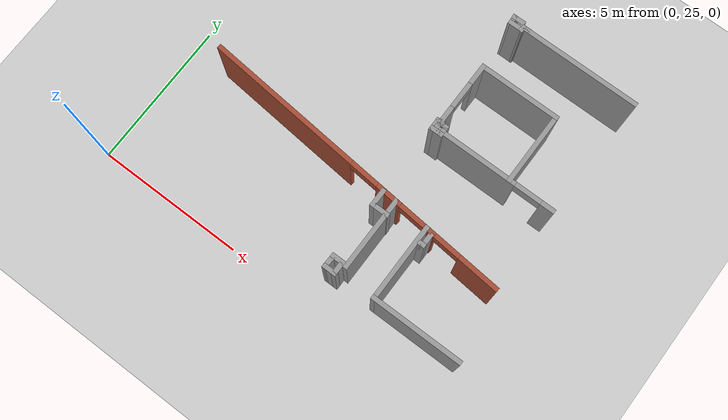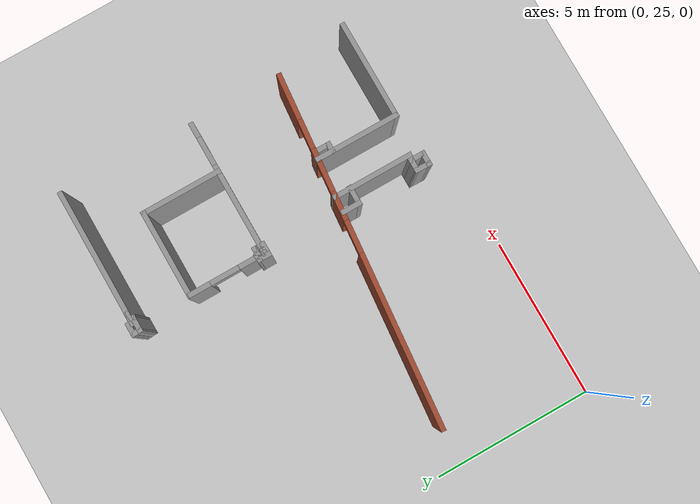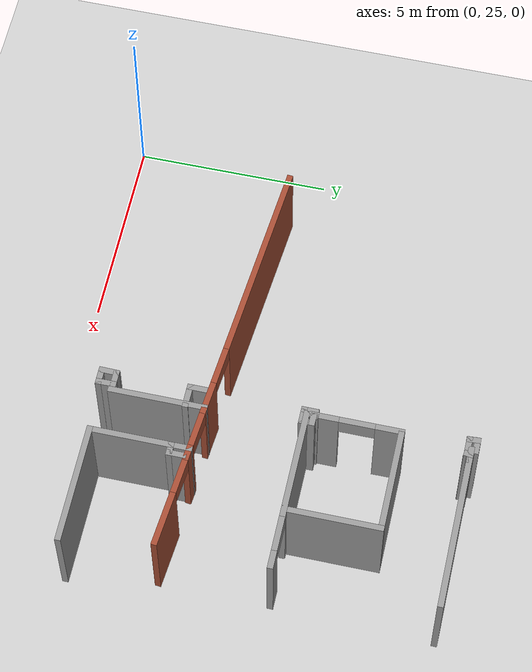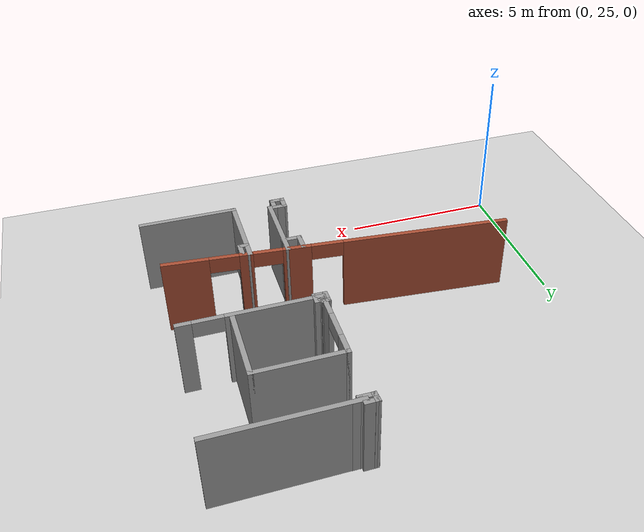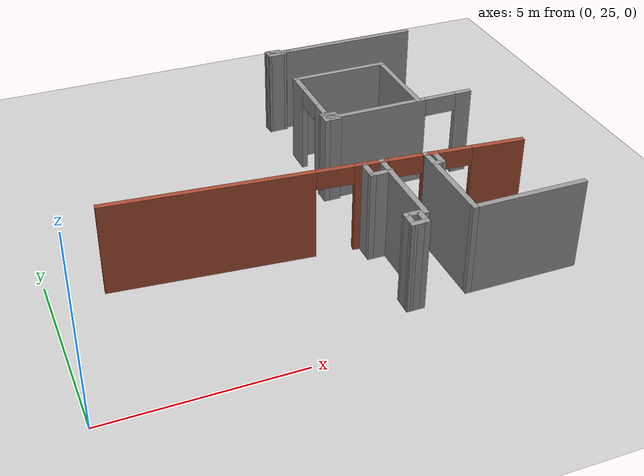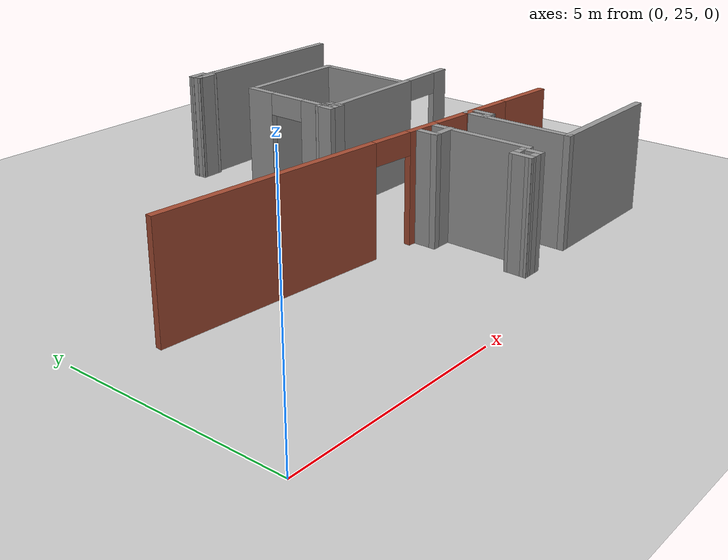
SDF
<sdf version="1.6">
 <world name="default">
  <model name="ground_plane">
   <static>1</static>
   <link name="link">
    <collision name="collision">
     <geometry><plane><normal>0 0 1</normal><size>100 100</size></plane></geometry>
     <surface><friction><ode><mu>100</mu><mu2>50</mu2></ode></friction></surface>
    </collision>
    <visual name="visual">
     <cast_shadows>0</cast_shadows>
     <geometry><plane><normal>0 0 1</normal><size>100 100</size></plane></geometry>
     <material>
      <script><uri>file://media/materials/scripts/gazebo.material</uri><name>Gazebo/Grey</name></script>
     </material>
    </visual>
   </link>
  </model>
  <model name="CVSSP">
   <pose>23.8714 24.094 0 0 -0 0</pose>
   <link name="Wall_386">
    <pose>-17.129 4.76187 0 0 0 -0.090044</pose>
    <visual name="Wall_386_Visual_0">
     <pose>-2.75908 0 1.25 0 -0 0</pose>
     <geometry><box><size>5.32665 0.15 2.5</size></box></geometry>
     <material>
      <script><uri>file://media/materials/scripts/gazebo.material</uri><name>Gazebo/Bricks</name></script>
      <ambient>1 1 1 1</ambient>
     </material>
    </visual>
    <collision name="Wall_386_Collision_0">
     <geometry><box><size>5.32665 0.15 2.5</size></box></geometry>
     <pose>-2.75908 0 1.25 0 -0 0</pose>
    </collision>
    <visual name="Wall_386_Visual_1">
     <pose>1.33587 0 1.25 0 -0 0</pose>
     <geometry><box><size>0.878962 0.15 2.5</size></box></geometry>
     <material>
      <script><uri>file://media/materials/scripts/gazebo.material</uri><name>Gazebo/Bricks</name></script>
      <ambient>1 1 1 1</ambient>
     </material>
    </visual>
    <collision name="Wall_386_Collision_1">
     <geometry><box><size>0.878962 0.15 2.5</size></box></geometry>
     <pose>1.33587 0 1.25 0 -0 0</pose>
    </collision>
    <visual name="Wall_386_Visual_2">
     <pose>2.88503 0 1.25 0 -0 0</pose>
     <geometry><box><size>0.419343 0.15 2.5</size></box></geometry>
     <material>
      <script><uri>file://media/materials/scripts/gazebo.material</uri><name>Gazebo/Bricks</name></script>
      <ambient>1 1 1 1</ambient>
     </material>
    </visual>
    <collision name="Wall_386_Collision_2">
     <geometry><box><size>0.419343 0.15 2.5</size></box></geometry>
     <pose>2.88503 0 1.25 0 -0 0</pose>
    </collision>
    <visual name="Wall_386_Visual_3">
     <pose>4.70855 0 1.25 0 -0 0</pose>
     <geometry><box><size>1.4277 0.15 2.5</size></box></geometry>
     <material>
      <script><uri>file://media/materials/scripts/gazebo.material</uri><name>Gazebo/Bricks</name></script>
      <ambient>1 1 1 1</ambient>
     </material>
    </visual>
    <collision name="Wall_386_Collision_3">
     <geometry><box><size>1.4277 0.15 2.5</size></box></geometry>
     <pose>4.70855 0 1.25 0 -0 0</pose>
    </collision>
    <visual name="Wall_386_Visual_4">
     <pose>0.400321 0 2.25 0 -0 0</pose>
     <geometry><box><size>0.992148 0.15 0.5</size></box></geometry>
     <material>
      <script><uri>file://media/materials/scripts/gazebo.material</uri><name>Gazebo/Bricks</name></script>
      <ambient>1 1 1 1</ambient>
     </material>
    </visual>
    <collision name="Wall_386_Collision_4">
     <geometry><box><size>0.992148 0.15 0.5</size></box></geometry>
     <pose>0.400321 0 2.25 0 -0 0</pose>
    </collision>
    <visual name="Wall_386_Visual_5">
     <pose>2.22536 0 2.25 0 -0 0</pose>
     <geometry><box><size>0.9 0.15 0.5</size></box></geometry>
     <material>
      <script><uri>file://media/materials/scripts/gazebo.material</uri><name>Gazebo/Bricks</name></script>
      <ambient>1 1 1 1</ambient>
     </material>
    </visual>
    <collision name="Wall_386_Collision_5">
     <geometry><box><size>0.9 0.15 0.5</size></box></geometry>
     <pose>2.22536 0 2.25 0 -0 0</pose>
    </collision>
    <visual name="Wall_386_Visual_6">
     <pose>3.5447 0 2.25 0 -0 0</pose>
     <geometry><box><size>0.9 0.15 0.5</size></box></geometry>
     <material>
      <script><uri>file://media/materials/scripts/gazebo.material</uri><name>Gazebo/Bricks</name></script>
      <ambient>1 1 1 1</ambient>
     </material>
    </visual>
    <collision name="Wall_386_Collision_6">
     <geometry><box><size>0.9 0.15 0.5</size></box></geometry>
     <pose>3.5447 0 2.25 0 -0 0</pose>
    </collision>
   </link>
   <link name="Wall_411">
    <pose>-13.8531 7.07942 0 0 -0 3.14159</pose>
    <visual name="Wall_411_Visual_0">
     <pose>-1.88996 0 1.25 0 -0 0</pose>
     <geometry><box><size>0.470089 0.15 2.5</size></box></geometry>
     <material>
      <script><uri>file://media/materials/scripts/gazebo.material</uri><name>Gazebo/Grey</name></script>
      <ambient>0.588235 0.588235 0.588235 1</ambient>
     </material>
    </visual>
    <collision name="Wall_411_Collision_0">
     <geometry><box><size>0.470089 0.15 2.5</size></box></geometry>
     <pose>-1.88996 0 1.25 0 -0 0</pose>
    </collision>
    <visual name="Wall_411_Visual_1">
     <pose>0.685044 0 1.25 0 -0 0</pose>
     <geometry><box><size>2.87991 0.15 2.5</size></box></geometry>
     <material>
      <script><uri>file://media/materials/scripts/gazebo.material</uri><name>Gazebo/Grey</name></script>
      <ambient>0.588235 0.588235 0.588235 1</ambient>
     </material>
    </visual>
    <collision name="Wall_411_Collision_1">
     <geometry><box><size>2.87991 0.15 2.5</size></box></geometry>
     <pose>0.685044 0 1.25 0 -0 0</pose>
    </collision>
    <visual name="Wall_411_Visual_2">
     <pose>-1.20491 0 2.25 0 -0 0</pose>
     <geometry><box><size>0.9 0.15 0.5</size></box></geometry>
     <material>
      <script><uri>file://media/materials/scripts/gazebo.material</uri><name>Gazebo/Grey</name></script>
      <ambient>0.588235 0.588235 0.588235 1</ambient>
     </material>
    </visual>
    <collision name="Wall_411_Collision_2">
     <geometry><box><size>0.9 0.15 0.5</size></box></geometry>
     <pose>-1.20491 0 2.25 0 -0 0</pose>
    </collision>
   </link>
   <link name="Wall_412">
    <pose>-15.9031 8.25442 0 0 -0 1.5708</pose>
    <visual name="Wall_412_Visual_0">
     <pose>-0.812626 0 1.25 0 -0 0</pose>
     <geometry><box><size>0.874747 0.15 2.5</size></box></geometry>
     <material>
      <script><uri>file://media/materials/scripts/gazebo.material</uri><name>Gazebo/Grey</name></script>
      <ambient>1 1 1 1</ambient>
     </material>
    </visual>
    <collision name="Wall_412_Collision_0">
     <geometry><box><size>0.874747 0.15 2.5</size></box></geometry>
     <pose>-0.812626 0 1.25 0 -0 0</pose>
    </collision>
    <visual name="Wall_412_Visual_1">
     <pose>0.887374 0 1.25 0 -0 0</pose>
     <geometry><box><size>0.725253 0.15 2.5</size></box></geometry>
     <material>
      <script><uri>file://media/materials/scripts/gazebo.material</uri><name>Gazebo/Grey</name></script>
      <ambient>1 1 1 1</ambient>
     </material>
    </visual>
    <collision name="Wall_412_Collision_1">
     <geometry><box><size>0.725253 0.15 2.5</size></box></geometry>
     <pose>0.887374 0 1.25 0 -0 0</pose>
    </collision>
    <visual name="Wall_412_Visual_2">
     <pose>0.074747 0 2.25 0 -0 0</pose>
     <geometry><box><size>0.9 0.15 0.5</size></box></geometry>
     <material>
      <script><uri>file://media/materials/scripts/gazebo.material</uri><name>Gazebo/Grey</name></script>
      <ambient>1 1 1 1</ambient>
     </material>
    </visual>
    <collision name="Wall_412_Collision_2">
     <geometry><box><size>0.9 0.15 0.5</size></box></geometry>
     <pose>0.074747 0 2.25 0 -0 0</pose>
    </collision>
   </link>
   <link name="Wall_413">
    <collision name="Wall_413_Collision">
     <geometry><box><size>2.75 0.15 2.5</size></box></geometry>
     <pose>0 0 1.25 0 -0 0</pose>
    </collision>
    <visual name="Wall_413_Visual">
     <pose>0 0 1.25 0 -0 0</pose>
     <geometry><box><size>2.75 0.15 2.5</size></box></geometry>
     <material>
      <script><uri>file://media/materials/scripts/gazebo.material</uri><name>Gazebo/Grey</name></script>
      <ambient>0.588235 0.588235 0.588235 1</ambient>
     </material>
    </visual>
    <pose>-14.6031 9.42942 0 0 -0 0</pose>
   </link>
   <link name="Wall_414">
    <collision name="Wall_414_Collision">
     <geometry><box><size>2.5 0.15 2.5</size></box></geometry>
     <pose>0 0 1.25 0 -0 0</pose>
    </collision>
    <visual name="Wall_414_Visual">
     <pose>0 0 1.25 0 -0 0</pose>
     <geometry><box><size>2.5 0.15 2.5</size></box></geometry>
     <material>
      <script><uri>file://media/materials/scripts/gazebo.material</uri><name>Gazebo/Grey</name></script>
      <ambient>0.588235 0.588235 0.588235 1</ambient>
     </material>
    </visual>
    <pose>-13.3031 8.25442 0 0 0 -1.5708</pose>
   </link>
   <link name="Wall_417">
    <collision name="Wall_417_Collision">
     <geometry><box><size>4.25 0.15 2.5</size></box></geometry>
     <pose>0 0 1.25 0 -0 0</pose>
    </collision>
    <visual name="Wall_417_Visual">
     <pose>0 0 1.25 0 -0 0</pose>
     <geometry><box><size>4.25 0.15 2.5</size></box></geometry>
     <material>
      <script><uri>file://media/materials/scripts/gazebo.material</uri><name>Gazebo/Grey</name></script>
      <ambient>1 1 1 1</ambient>
     </material>
    </visual>
    <pose>-13.7515 11.1539 0 0 -0 0</pose>
   </link>
   <link name="Wall_426">
    <collision name="Wall_426_Collision">
     <geometry><box><size>2.5 0.15 2.5</size></box></geometry>
     <pose>0 0 1.25 0 -0 0</pose>
    </collision>
    <visual name="Wall_426_Visual">
     <pose>0 0 1.25 0 -0 0</pose>
     <geometry><box><size>2.5 0.15 2.5</size></box></geometry>
     <material>
      <script><uri>file://media/materials/scripts/gazebo.material</uri><name>Gazebo/Grey</name></script>
      <ambient>0.588235 0.588235 0.588235 1</ambient>
     </material>
    </visual>
    <pose>-15.526 3.44298 0 0 0 -1.5708</pose>
   </link>
   <link name="Wall_434">
    <collision name="Wall_434_Collision">
     <geometry><box><size>0.640034 0.15 2.5</size></box></geometry>
     <pose>0 0 1.25 0 -0 0</pose>
    </collision>
    <visual name="Wall_434_Visual">
     <pose>0 0 1.25 0 -0 0</pose>
     <geometry><box><size>0.640034 0.15 2.5</size></box></geometry>
     <material>
      <script><uri>file://media/materials/scripts/gazebo.material</uri><name>Gazebo/Grey</name></script>
      <ambient>1 1 1 1</ambient>
     </material>
    </visual>
    <pose>-15.7533 4.14574 0 0 -0 3.14159</pose>
   </link>
   <link name="Wall_435">
    <collision name="Wall_435_Collision">
     <geometry><box><size>0.639722 0.15 2.5</size></box></geometry>
     <pose>0 0 1.25 0 -0 0</pose>
    </collision>
    <visual name="Wall_435_Visual">
     <pose>0 0 1.25 0 -0 0</pose>
     <geometry><box><size>0.639722 0.15 2.5</size></box></geometry>
     <material>
      <script><uri>file://media/materials/scripts/gazebo.material</uri><name>Gazebo/Grey</name></script>
      <ambient>0.588235 0.588235 0.588235 1</ambient>
     </material>
    </visual>
    <pose>-15.9982 4.3906 0 0 -0 1.5708</pose>
   </link>
   <link name="Wall_443">
    <collision name="Wall_443_Collision">
     <geometry><box><size>3.08833 0.15 2.5</size></box></geometry>
     <pose>0 0 1.25 0 -0 0</pose>
    </collision>
    <visual name="Wall_443_Visual">
     <pose>0 0 1.25 0 -0 0</pose>
     <geometry><box><size>3.08833 0.15 2.5</size></box></geometry>
     <material>
      <script><uri>file://media/materials/scripts/gazebo.material</uri><name>Gazebo/Grey</name></script>
      <ambient>0.588235 0.588235 0.588235 1</ambient>
     </material>
    </visual>
    <pose>-12.9025 2.02945 0 0 -0 3.14159</pose>
   </link>
   <link name="Wall_444">
    <collision name="Wall_444_Collision">
     <geometry><box><size>2.63359 0.15 2.5</size></box></geometry>
     <pose>0 0 1.25 0 -0 0</pose>
    </collision>
    <visual name="Wall_444_Visual">
     <pose>0 0 1.25 0 -0 0</pose>
     <geometry><box><size>2.63359 0.15 2.5</size></box></geometry>
     <material>
      <script><uri>file://media/materials/scripts/gazebo.material</uri><name>Gazebo/Grey</name></script>
      <ambient>0.588235 0.588235 0.588235 1</ambient>
     </material>
    </visual>
    <pose>-14.3716 3.27124 0 0 -0 1.5708</pose>
   </link>
   <link name="Wall_685">
    <collision name="Wall_685_Collision">
     <geometry><box><size>0.296904 0.15 2.5</size></box></geometry>
     <pose>0 0 1.25 0 -0 0</pose>
    </collision>
    <visual name="Wall_685_Visual">
     <pose>0 0 1.25 0 -0 0</pose>
     <geometry><box><size>0.296904 0.15 2.5</size></box></geometry>
     <material>
      <script><uri>file://media/materials/scripts/gazebo.material</uri><name>Gazebo/Grey</name></script>
      <ambient>1 1 1 1</ambient>
     </material>
    </visual>
    <pose>-15.5827 11.1599 0 0 -0 3.14159</pose>
   </link>
   <link name="Wall_686">
    <collision name="Wall_686_Collision">
     <geometry><box><size>0.244046 0.15 2.5</size></box></geometry>
     <pose>0 0 1.25 0 -0 0</pose>
    </collision>
    <visual name="Wall_686_Visual">
     <pose>0 0 1.25 0 -0 0</pose>
     <geometry><box><size>0.244046 0.15 2.5</size></box></geometry>
     <material>
      <script><uri>file://media/materials/scripts/gazebo.material</uri><name>Gazebo/Grey</name></script>
      <ambient>1 1 1 1</ambient>
     </material>
    </visual>
    <pose>-15.6625 11.1134 0 0 0 -1.71269</pose>
   </link>
   <link name="Wall_687">
    <collision name="Wall_687_Collision">
     <geometry><box><size>0.535932 0.15 2.5</size></box></geometry>
     <pose>0 0 1.25 0 -0 0</pose>
    </collision>
    <visual name="Wall_687_Visual">
     <pose>0 0 1.25 0 -0 0</pose>
     <geometry><box><size>0.535932 0.15 2.5</size></box></geometry>
     <material>
      <script><uri>file://media/materials/scripts/gazebo.material</uri><name>Gazebo/Grey</name></script>
      <ambient>1 1 1 1</ambient>
     </material>
    </visual>
    <pose>-15.862 11.0668 0 0 -0 3.14159</pose>
   </link>
   <link name="Wall_688">
    <collision name="Wall_688_Collision">
     <geometry><box><size>0.349944 0.15 2.5</size></box></geometry>
     <pose>0 0 1.25 0 -0 0</pose>
    </collision>
    <visual name="Wall_688_Visual">
     <pose>0 0 1.25 0 -0 0</pose>
     <geometry><box><size>0.349944 0.15 2.5</size></box></geometry>
     <material>
      <script><uri>file://media/materials/scripts/gazebo.material</uri><name>Gazebo/Grey</name></script>
      <ambient>1 1 1 1</ambient>
     </material>
    </visual>
    <pose>-16.0615 11.1666 0 0 -0 1.63736</pose>
   </link>
   <link name="Wall_689">
    <collision name="Wall_689_Collision">
     <geometry><box><size>0.442904 0.15 2.5</size></box></geometry>
     <pose>0 0 1.25 0 -0 0</pose>
    </collision>
    <visual name="Wall_689_Visual">
     <pose>0 0 1.25 0 -0 0</pose>
     <geometry><box><size>0.442904 0.15 2.5</size></box></geometry>
     <material>
      <script><uri>file://media/materials/scripts/gazebo.material</uri><name>Gazebo/Grey</name></script>
      <ambient>1 1 1 1</ambient>
     </material>
    </visual>
    <pose>-15.9218 11.2663 0 0 -0 0</pose>
   </link>
   <link name="Wall_697">
    <collision name="Wall_697_Collision">
     <geometry><box><size>0.438966 0.15 2.5</size></box></geometry>
     <pose>0 0 1.25 0 -0 0</pose>
    </collision>
    <visual name="Wall_697_Visual">
     <pose>0 0 1.25 0 -0 0</pose>
     <geometry><box><size>0.438966 0.15 2.5</size></box></geometry>
     <material>
      <script><uri>file://media/materials/scripts/gazebo.material</uri><name>Gazebo/Grey</name></script>
      <ambient>1 1 1 1</ambient>
     </material>
    </visual>
    <pose>-15.9915 7.1434 0 0 0 -1.5708</pose>
   </link>
   <link name="Wall_698">
    <collision name="Wall_698_Collision">
     <geometry><box><size>0.461779 0.15 2.5</size></box></geometry>
     <pose>0 0 1.25 0 -0 0</pose>
    </collision>
    <visual name="Wall_698_Visual">
     <pose>0 0 1.25 0 -0 0</pose>
     <geometry><box><size>0.461779 0.15 2.5</size></box></geometry>
     <material>
      <script><uri>file://media/materials/scripts/gazebo.material</uri><name>Gazebo/Grey</name></script>
      <ambient>1 1 1 1</ambient>
     </material>
    </visual>
    <pose>-15.8356 6.99892 0 0 -0 0</pose>
   </link>
   <link name="Wall_699">
    <collision name="Wall_699_Collision">
     <geometry><box><size>0.408549 0.15 2.5</size></box></geometry>
     <pose>0 0 1.25 0 -0 0</pose>
    </collision>
    <visual name="Wall_699_Visual">
     <pose>0 0 1.25 0 -0 0</pose>
     <geometry><box><size>0.408549 0.15 2.5</size></box></geometry>
     <material>
      <script><uri>file://media/materials/scripts/gazebo.material</uri><name>Gazebo/Grey</name></script>
      <ambient>1 1 1 1</ambient>
     </material>
    </visual>
    <pose>-15.6797 7.1282 0 0 -0 1.5708</pose>
   </link>
   <link name="Wall_700">
    <collision name="Wall_700_Collision">
     <geometry><box><size>0.332505 0.15 2.5</size></box></geometry>
     <pose>0 0 1.25 0 -0 0</pose>
    </collision>
    <visual name="Wall_700_Visual">
     <pose>0 0 1.25 0 -0 0</pose>
     <geometry><box><size>0.332505 0.15 2.5</size></box></geometry>
     <material>
      <script><uri>file://media/materials/scripts/gazebo.material</uri><name>Gazebo/Grey</name></script>
      <ambient>1 1 1 1</ambient>
     </material>
    </visual>
    <pose>-15.771 7.25747 0 0 -0 3.14159</pose>
   </link>
   <link name="Wall_701">
    <collision name="Wall_701_Collision">
     <geometry><box><size>0.196256 0.15 2.5</size></box></geometry>
     <pose>0 0 1.25 0 -0 0</pose>
    </collision>
    <visual name="Wall_701_Visual">
     <pose>0 0 1.25 0 -0 0</pose>
     <geometry><box><size>0.196256 0.15 2.5</size></box></geometry>
     <material>
      <script><uri>file://media/materials/scripts/gazebo.material</uri><name>Gazebo/Grey</name></script>
      <ambient>1 1 1 1</ambient>
     </material>
    </visual>
    <pose>-15.8622 7.28028 0 0 -0 1.5708</pose>
   </link>
   <link name="Wall_702">
    <collision name="Wall_702_Collision">
     <geometry><box><size>0.195626 0.15 2.5</size></box></geometry>
     <pose>0 0 1.25 0 -0 0</pose>
    </collision>
    <visual name="Wall_702_Visual">
     <pose>0 0 1.25 0 -0 0</pose>
     <geometry><box><size>0.195626 0.15 2.5</size></box></geometry>
     <material>
      <script><uri>file://media/materials/scripts/gazebo.material</uri><name>Gazebo/Grey</name></script>
      <ambient>1 1 1 1</ambient>
     </material>
    </visual>
    <pose>-15.8622 7.28028 0 0 0 -1.5708</pose>
   </link>
   <link name="Wall_703">
    <collision name="Wall_703_Collision">
     <geometry><box><size>0.195626 0.15 2.5</size></box></geometry>
     <pose>0 0 1.25 0 -0 0</pose>
    </collision>
    <visual name="Wall_703_Visual">
     <pose>0 0 1.25 0 -0 0</pose>
     <geometry><box><size>0.195626 0.15 2.5</size></box></geometry>
     <material>
      <script><uri>file://media/materials/scripts/gazebo.material</uri><name>Gazebo/Grey</name></script>
      <ambient>1 1 1 1</ambient>
     </material>
    </visual>
    <pose>-15.8622 7.28028 0 0 -0 1.5708</pose>
   </link>
   <link name="Wall_704">
    <collision name="Wall_704_Collision">
     <geometry><box><size>0.280166 0.15 2.5</size></box></geometry>
     <pose>0 0 1.25 0 -0 0</pose>
    </collision>
    <visual name="Wall_704_Visual">
     <pose>0 0 1.25 0 -0 0</pose>
     <geometry><box><size>0.280166 0.15 2.5</size></box></geometry>
     <material>
      <script><uri>file://media/materials/scripts/gazebo.material</uri><name>Gazebo/Grey</name></script>
      <ambient>1 1 1 1</ambient>
     </material>
    </visual>
    <pose>-15.9268 7.29549 0 0 0 -3.02448</pose>
   </link>
   <link name="Wall_706">
    <collision name="Wall_706_Collision">
     <geometry><box><size>0.477342 0.15 2.5</size></box></geometry>
     <pose>0 0 1.25 0 -0 0</pose>
    </collision>
    <visual name="Wall_706_Visual">
     <pose>0 0 1.25 0 -0 0</pose>
     <geometry><box><size>0.477342 0.15 2.5</size></box></geometry>
     <material>
      <script><uri>file://media/materials/scripts/gazebo.material</uri><name>Gazebo/Grey</name></script>
      <ambient>0.588235 0.588235 0.588235 1</ambient>
     </material>
    </visual>
    <pose>-15.8371 1.91937 0 0 -0 0</pose>
   </link>
   <link name="Wall_707">
    <collision name="Wall_707_Collision">
     <geometry><box><size>0.522925 0.15 2.5</size></box></geometry>
     <pose>0 0 1.25 0 -0 0</pose>
    </collision>
    <visual name="Wall_707_Visual">
     <pose>0 0 1.25 0 -0 0</pose>
     <geometry><box><size>0.522925 0.15 2.5</size></box></geometry>
     <material>
      <script><uri>file://media/materials/scripts/gazebo.material</uri><name>Gazebo/Grey</name></script>
      <ambient>0.588235 0.588235 0.588235 1</ambient>
     </material>
    </visual>
    <pose>-15.6736 2.10568 0 0 -0 1.5708</pose>
   </link>
   <link name="Wall_708">
    <collision name="Wall_708_Collision">
     <geometry><box><size>0.469474 0.15 2.5</size></box></geometry>
     <pose>0 0 1.25 0 -0 0</pose>
    </collision>
    <visual name="Wall_708_Visual">
     <pose>0 0 1.25 0 -0 0</pose>
     <geometry><box><size>0.469474 0.15 2.5</size></box></geometry>
     <material>
      <script><uri>file://media/materials/scripts/gazebo.material</uri><name>Gazebo/Grey</name></script>
      <ambient>1 1 1 1</ambient>
     </material>
    </visual>
    <pose>-15.8333 2.29199 0 0 -0 3.14159</pose>
   </link>
   <link name="Wall_709">
    <collision name="Wall_709_Collision">
     <geometry><box><size>0.522692 0.15 2.5</size></box></geometry>
     <pose>0 0 1.25 0 -0 0</pose>
    </collision>
    <visual name="Wall_709_Visual">
     <pose>0 0 1.25 0 -0 0</pose>
     <geometry><box><size>0.522692 0.15 2.5</size></box></geometry>
     <material>
      <script><uri>file://media/materials/scripts/gazebo.material</uri><name>Gazebo/Grey</name></script>
      <ambient>0.588235 0.588235 0.588235 1</ambient>
     </material>
    </visual>
    <pose>-15.9968 2.10568 0 0 0 -1.5912</pose>
   </link>
   <link name="Wall_796">
    <collision name="Wall_796_Collision">
     <geometry><box><size>0.358496 0.15 2.5</size></box></geometry>
     <pose>0 0 1.25 0 -0 0</pose>
    </collision>
    <visual name="Wall_796_Visual">
     <pose>0 0 1.25 0 -0 0</pose>
     <geometry><box><size>0.358496 0.15 2.5</size></box></geometry>
     <material>
      <script><uri>file://media/materials/scripts/gazebo.material</uri><name>Gazebo/Grey</name></script>
      <ambient>0.588235 0.588235 0.588235 1</ambient>
     </material>
    </visual>
    <pose>-14.2629 4.05998 0 0 -0 0</pose>
   </link>
   <link name="Wall_797">
    <collision name="Wall_797_Collision">
     <geometry><box><size>0.5 0.15 2.5</size></box></geometry>
     <pose>0 0 1.25 0 -0 0</pose>
    </collision>
    <visual name="Wall_797_Visual">
     <pose>0 0 1.25 0 -0 0</pose>
     <geometry><box><size>0.5 0.15 2.5</size></box></geometry>
     <material>
      <script><uri>file://media/materials/scripts/gazebo.material</uri><name>Gazebo/Grey</name></script>
      <ambient>0.588235 0.588235 0.588235 1</ambient>
     </material>
    </visual>
    <pose>-14.1588 4.23498 0 0 -0 1.5708</pose>
   </link>
   <static>1</static>
  </model>
 </world>
</sdf>
